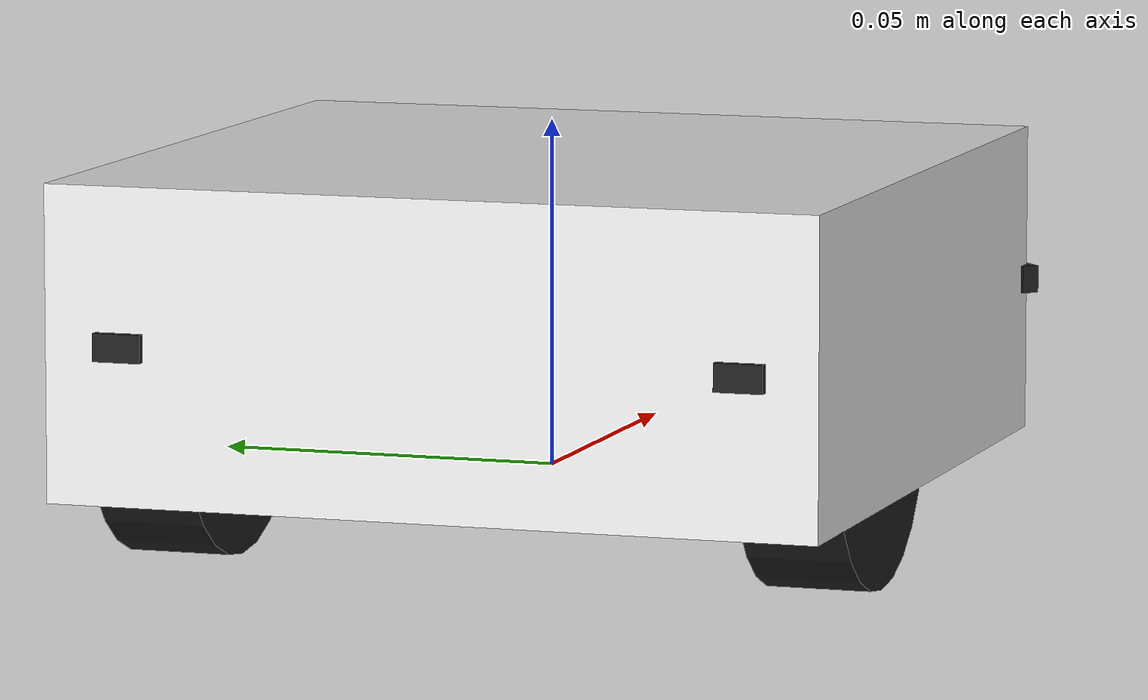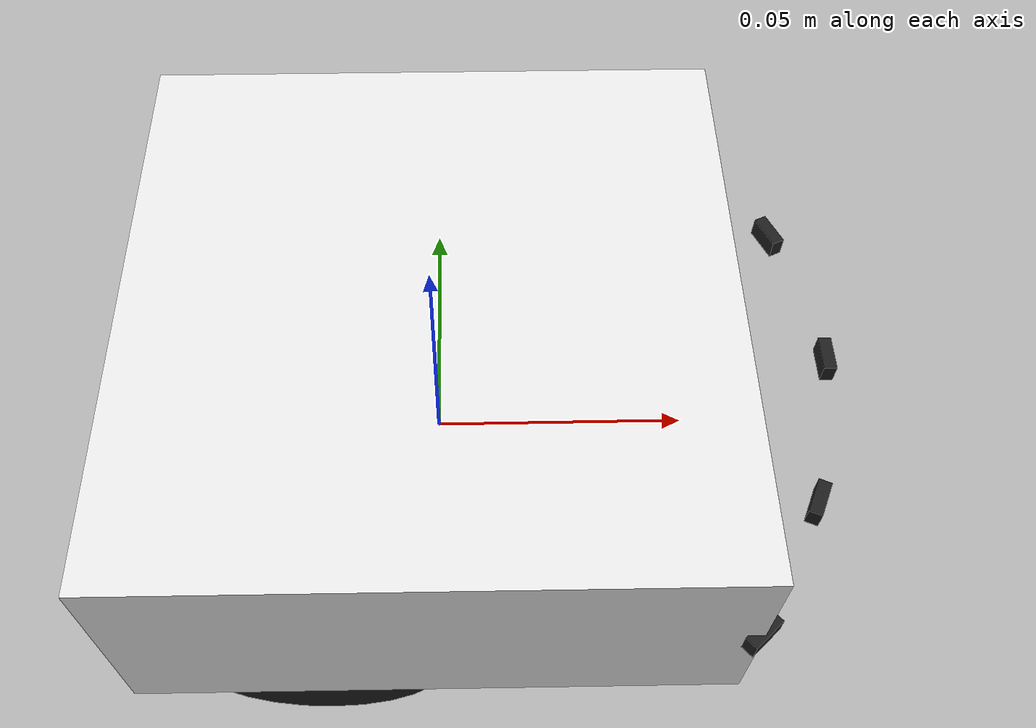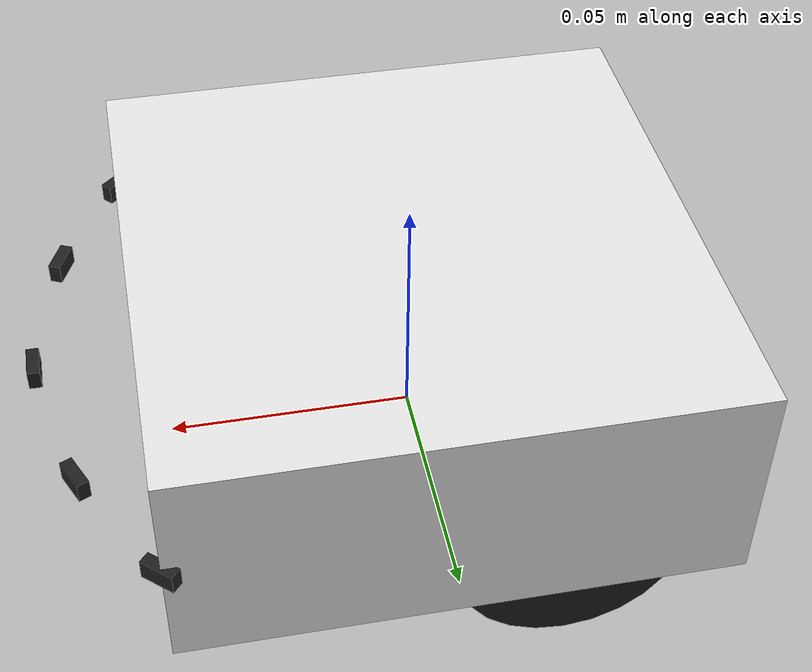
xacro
<?xml version="1.0"?>
<robot xmlns:xacro="https://www.ros.org/wiki/xacro" name="thymio">

    <xacro:include filename="$(find ros_basics_models)/urdf/utils/inertia.xacro" />
    <xacro:include filename="$(find ros_basics_models)/urdf/utils/materials.xacro" />
    <xacro:include filename="$(find ros_basics_models)/urdf/utils/custom_sensors.xacro" />
    <xacro:include filename="$(find ros_basics_exercise)/urdf/thymio_simple.gazebo" />

    <xacro:arg name="left_wheel_mu" default="100.0"/>
    <xacro:property name="left_wheel_mu_p" value="$(arg left_wheel_mu)"/>
    <xacro:arg name="right_wheel_mu" default="100.0"/>
    <xacro:property name="right_wheel_mu_p" value="$(arg right_wheel_mu)"/>
    <xacro:property name="wheel_radius" value="0.022"/>
    <xacro:property name="wheel_len" value="0.015"/>
    <xacro:arg name="mass" default="0.270"/>
    <xacro:property name="mass_p" value="$(arg mass)"/>
    <xacro:property name="body_mass" value="${mass_p * 0.80}"/>
    <xacro:property name="wheel_mass" value="${mass_p * 0.10}"/>

    <link name="base_link">
        <visual>
            <origin xyz="0 0 0.0225"/>
            <geometry>
                <box size="0.11 0.112 0.045"/>
            </geometry>
            <material name="white"/>
        </visual>
        <collision>
            <origin xyz="0 0 0.0225"/>
            <geometry>
                <box size="0.11 0.112 0.045"/>
            </geometry>
        </collision>
        <inertial>
            <mass value = "${body_mass}"/>
            <xacro:box_inertia mass="${body_mass}" x="0.11" y="0.112" z="0.045"/>
        </inertial>

        <!-- Caster wheel -->
        <visual>
            <origin xyz="0.035 0 0"/>
            <geometry>
                <sphere radius="0.01"/>
            </geometry>
            <material name="white"/>
        </visual>
        <collision>
            <origin xyz="0.035 0 0"/>
            <geometry>
                <sphere radius="0.01"/>
            </geometry>
        </collision>
    </link>

    <!-- Right wheel -->
    <!-- Joint for the right wheel -->

    <joint name="right_wheel_joint" type="continuous">
        <parent link="base_link"/>
        <child link="right_wheel_link"/>
        <axis rpy="0 0 0" xyz="0 1 0"/>
        <origin xyz="-0.02 -0.0476 0.01"/>
    </joint>

    <link name="right_wheel_link">
        <visual>
            <origin xyz="0 0 0" rpy="1.5707 0 0"/>
        <geometry>
            <cylinder length="${wheel_len}" radius="${wheel_radius}"/>
        </geometry>
        </visual>

        <collision>
            <origin xyz="0 0 0" rpy="1.5707 0 0"/>
            <geometry>
                <cylinder length="${wheel_len}" radius="${wheel_radius}"/>
            </geometry>
        </collision>
        <inertial>
            <mass value = "${wheel_mass}"/>
            <xacro:cylinder_inertia mass="${wheel_mass}" h="${wheel_len}" r="${wheel_radius}"/>
        </inertial>
    </link>

    <!-- Left wheel -->
    <!-- Joint for the left wheel -->
    <joint name="left_wheel_joint" type="continuous">
        <parent link="base_link"/>
        <child link="left_wheel_link"/>
        <axis rpy="0 0 0" xyz="0 1 0"/>
        <origin xyz="-0.02 0.0476  0.01"/>
    </joint>

    <link name="left_wheel_link">
        <visual>
            <origin xyz="0 0 0" rpy="1.5707 0 0"/>
        <geometry>
            <cylinder length="${wheel_len}" radius="${wheel_radius}"/>
        </geometry>
        </visual>

        <collision>
            <origin xyz="0 0 0" rpy="1.5707 0 0"/>
            <geometry>
                <cylinder length="${wheel_len}" radius="${wheel_radius}"/>
            </geometry>
        </collision>
        <inertial>
            <mass value = "${wheel_mass}"/>
            <xacro:cylinder_inertia mass="${wheel_mass}" h="${wheel_len}" r="${wheel_radius}"/>
        </inertial>
    </link>

    <!-- Sensors-->
    <xacro:csensor plink="base_link" id="0" mass="0.001" originrpy="0 0 0" originxyz="0 0 0" jointxyz="0.055 0.055 0.0225" jointrpy="0 0 -0.73" />
    <xacro:csensor plink="base_link" id="1" mass="0.001" originrpy="0 0 0" originxyz="0 0 0" jointxyz="0.0685 0.0307 0.0225" jointrpy="0 0 -1.15" />
    <xacro:csensor plink="base_link" id="2" mass="0.001" originrpy="0 0 0" originxyz="0 0 0" jointxyz="0.0751 0 0.0225" jointrpy="0 0 -1.57" />
    <xacro:csensor plink="base_link" id="3" mass="0.001" originrpy="0 0 0" originxyz="0 0 0" jointxyz="0.0685 -0.0307 0.0225" jointrpy="0 0 -1.99" />
    <xacro:csensor plink="base_link" id="4" mass="0.001" originrpy="0 0 0" originxyz="0 0 0" jointxyz="0.055 -0.055 0.0225" jointrpy="0 0 -2.41" />
    <xacro:csensor plink="base_link" id="5" mass="0.001" originrpy="0 0 0" originxyz="0 0 0" jointxyz="-0.055 0.045 0.0225" jointrpy="0 0 1.57" />
    <xacro:csensor plink="base_link" id="6" mass="0.001" originrpy="0 0 0" originxyz="0 0 0" jointxyz="-0.055 -0.045 0.0225" jointrpy="0 0 1.57" />
</robot>

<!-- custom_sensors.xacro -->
<robot xmlns:xacro="https://www.ros.org/wiki/xacro">

    <xacro:property name="id" value="foo"/>
    <xacro:property name="plink" value="foo_parent"/>

    <xacro:property name="jointxyz" value="0 0 0"/>
    <xacro:property name="jointrpy" value="0 0 0"/>
    <xacro:property name="sensor_width" value="0.007" />
    <xacro:property name="sensor_length" value="0.0025" />
    <xacro:property name="sensor_height" value="0.004" />
    <xacro:property name="originrpy" value="0 0 0" />
    <xacro:property name="originxyz" value="0 0 0" />

    <xacro:macro name="csensor" params="plink id mass originrpy originxyz jointxyz jointrpy">

        <link name="sensor_${id}_mount_point">
            <visual>
                <geometry>
                    <box size="${sensor_width} ${sensor_length} ${sensor_height}" />
                </geometry>
                <material name="black" />
                <origin rpy="${originrpy}" xyz="${originxyz}" />
            </visual>
            <collision>
                <geometry>
                    <box size="0 0 0" />
                </geometry>
                <origin rpy="${originrpy}" xyz="${originxyz}" />
            </collision>
            <inertial>
                <mass value="${mass}" />
                <origin rpy="${originrpy}" xyz="${originxyz}" />
                <xacro:box_inertia mass="${mass}" x="${sensor_length}" y="${sensor_width}" z="${sensor_height}" />
            </inertial>
        </link>

        <joint name="${plink}_sensor_${id}_mount_point" type="fixed">
            <parent link="${plink}" />
            <child link="sensor_${id}_mount_point" />
            <origin xyz="${jointxyz}" rpy="${jointrpy}" />
            <axis rpy="0 0 0" xyz="0 0 0"/>
        </joint>

        <link name="sensor_${id}">
            <visual>
                <geometry>
                    <box size="0 0 0" />
                </geometry>
                <material name="black" />
                <origin rpy="0 0 0" xyz="0 0 0" />
            </visual>
            <collision>
                <geometry>
                    <box size="0 0 0" />
                </geometry>
                <origin rpy="0 0 0" xyz="0 0 0" />
            </collision>
            <inertial>
                <mass value="0" />
                <origin rpy="0 0 0" xyz="0 0 0" />
                <xacro:box_inertia mass="0.001" x="${sensor_length}" y="${sensor_width}" z="${sensor_height}" />
            </inertial>
        </link>

        <joint name="${plink}_sensor_${id}" type="fixed">
            <parent link="sensor_${id}_mount_point" />
            <child link="sensor_${id}" />
            <origin xyz="-${sensor_width / 2} 0 0" rpy="0 0 1.57" />
            <axis rpy="0 0 0" xyz="0 0 0"/>
        </joint>

        <gazebo reference="sensor_${id}">
            <sensor type="ray" name="sensor_${id}_instance">
                <pose>0 0 0 0 0 0</pose>
                <ray>
                    <scan>
                        <horizontal>
                            <samples>1</samples>
                            <resolution>1</resolution>
                            <min_angle>-0.05</min_angle>
                            <max_angle>0.05</max_angle>
                        </horizontal>
                        <vertical>
                            <samples>1</samples>
                            <resolution>1</resolution>
                            <min_angle>-0.05</min_angle>
                            <max_angle>0.05</max_angle>
                        </vertical>
                    </scan>
                    <range>
                        <min>0.0005</min>
                        <max>0.04</max>
                        <resolution>0.0001</resolution>
                    </range>
                </ray>
                <plugin name="laser" filename="libgazebo_ros_laser.so">
                    <topicName>/thymio_laser_${id}/scan</topicName>
                    <frameName>sensor_${id}</frameName>
                </plugin>
                <always_on>true</always_on>
                <update_rate>10</update_rate>
                <visualize>true</visualize>
            </sensor>
        </gazebo>
    </xacro:macro>

</robot>
